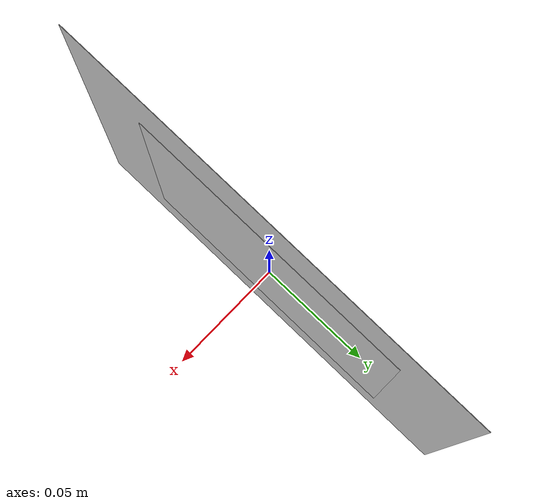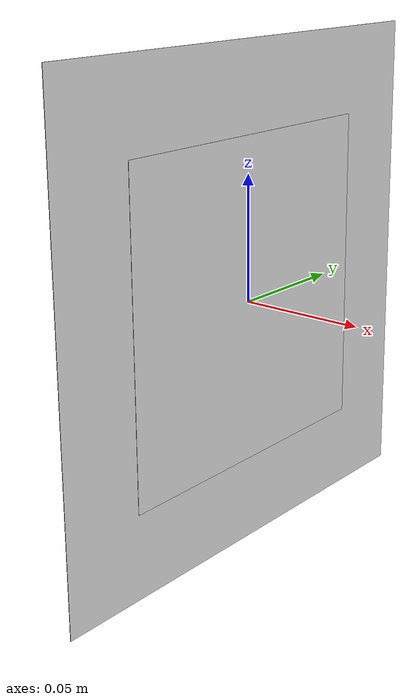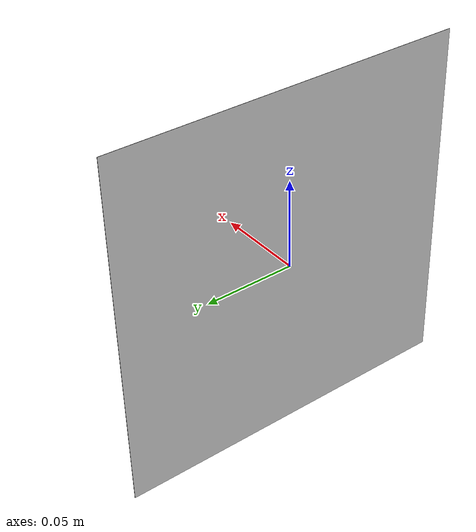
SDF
<?xml version="1.0" ?>
<sdf version="1.4">
  <model name="tag">
    <static>false</static>
    <link name="link">
      <pose>0 0 0 1.57 0 1.57</pose>
      <gravity>false</gravity>
      <!-- White background for tag -->

      <visual name="tag_background">
        <cast_shadows>false</cast_shadows>
        <pose>0 0 0 0 0 0</pose>
        <geometry>
          <plane>
            <normal>0 0 1</normal>
            <size>0.2 0.2</size>
          </plane>
        </geometry>
	<material>
          <script>
            <uri>model://tag/materials/scripts</uri>
            <uri>model://tag/materials/textures</uri>
            <name>tag/empty</name>
          </script>
	</material>
      </visual>
      <!-- The visual tag pattern is changed by the plugin depending on the name of this model. So spawn it with the name tag_01 to let it have the patter with id 01. -->
      <visual name="pattern">
        <cast_shadows>false</cast_shadows>
        <pose>0 0 0.001 0 0 0</pose>
        <geometry>
          <plane>
            <normal>0 0 1</normal>
            <size>0.130 0.130</size> <!-- Changed size from 0.135 0.135 to 0.13 0.13 -->
          </plane>
        </geometry>
	<material>
          <script>
            <uri>model://tag/materials/scripts</uri>
            <uri>model://tag/materials/textures</uri>
            <name>tag/tag_01</name>
          </script>
	</material>
      </visual>
    </link>

    <!-- Plugin to create the right pattern and publish the position -->
    <plugin name="Tag" filename="libtag.so"/>
    <plugin name="GPS" filename="libgps.so"/>
  </model>
</sdf>
